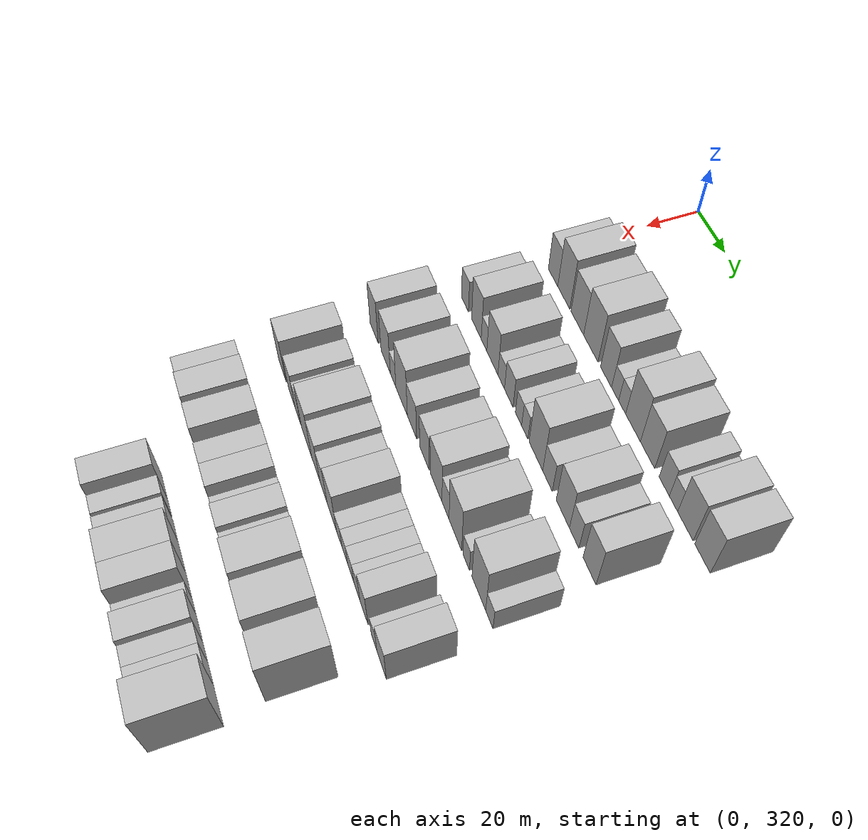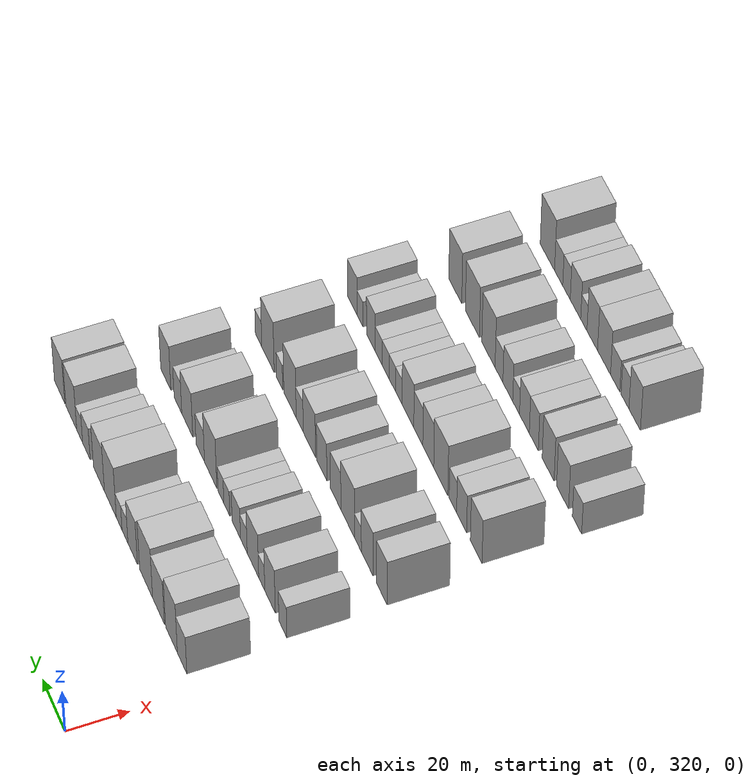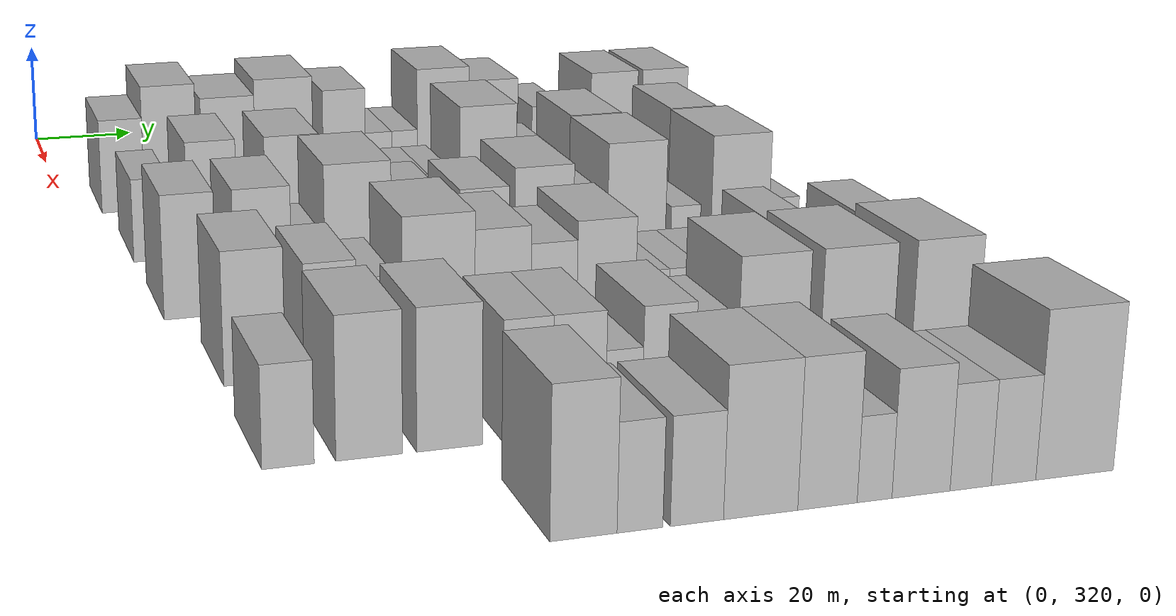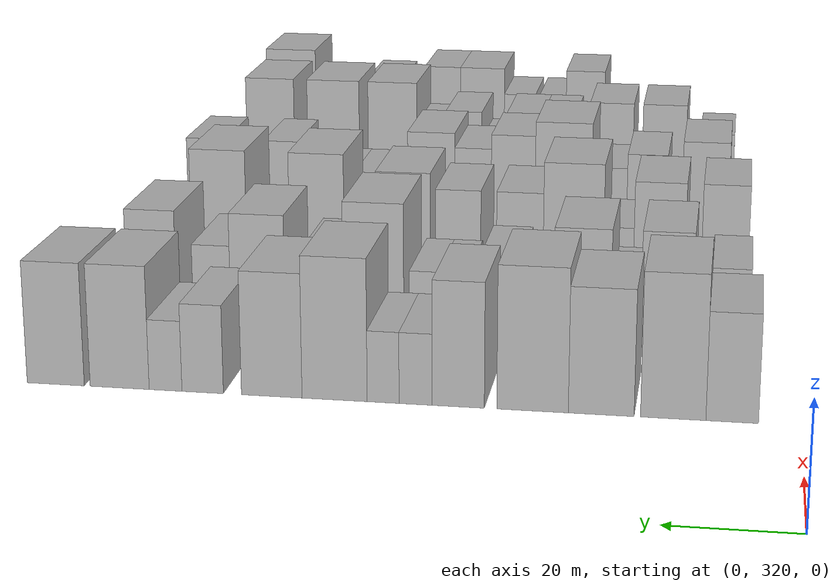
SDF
<sdf version="1.6">
 <world name="default">
  <model name="building_88">
   <static>1</static>
   <pose>50.0000 330.6429 0 0.000000 0.000000 0.000000</pose>
   <link name="link">
    <pose>0 0 9.00 0 0 0</pose>
    <collision name="collision"><geometry><box><size>20.0000 8.1481 18.0000</size></box></geometry></collision>
    <visual name="visual">
     <cast_shadows>0</cast_shadows>
     <geometry><box><size>20.0000 8.1481 18.0000</size></box></geometry>
     <material>
      <script>
       <uri>model://HANNAS_wall/materials/scripts</uri>
       <uri>model://HANNAS_wall/materials/textures</uri>
       <name>vrc/HANNAS_wall</name>
      </script>
     </material>
    </visual>
   </link>
  </model>
  <model name="building_89">
   <static>1</static>
   <pose>50.0000 339.8225 0 0.000000 0.000000 0.000000</pose>
   <link name="link">
    <pose>0 0 12.00 0 0 0</pose>
    <collision name="collision"><geometry><box><size>20.0000 10.2111 24.0000</size></box></geometry></collision>
    <visual name="visual">
     <cast_shadows>0</cast_shadows>
     <geometry><box><size>20.0000 10.2111 24.0000</size></box></geometry>
     <material>
      <script>
       <uri>model://HANNAS_wall/materials/scripts</uri>
       <uri>model://HANNAS_wall/materials/textures</uri>
       <name>vrc/HANNAS_wall</name>
      </script>
     </material>
    </visual>
   </link>
  </model>
  <model name="building_90">
   <static>1</static>
   <pose>50.0000 351.1160 0 0.000000 0.000000 0.000000</pose>
   <link name="link">
    <pose>0 0 10.50 0 0 0</pose>
    <collision name="collision"><geometry><box><size>20.0000 10.3759 21.0000</size></box></geometry></collision>
    <visual name="visual">
     <cast_shadows>0</cast_shadows>
     <geometry><box><size>20.0000 10.3759 21.0000</size></box></geometry>
     <material>
      <script>
       <uri>model://HANNAS_wall/materials/scripts</uri>
       <uri>model://HANNAS_wall/materials/textures</uri>
       <name>vrc/HANNAS_wall</name>
      </script>
     </material>
    </visual>
   </link>
  </model>
  <model name="building_91">
   <static>1</static>
   <pose>50.0000 361.9929 0 0.000000 0.000000 0.000000</pose>
   <link name="link">
    <pose>0 0 12.00 0 0 0</pose>
    <collision name="collision"><geometry><box><size>20.0000 11.3780 24.0000</size></box></geometry></collision>
    <visual name="visual">
     <cast_shadows>0</cast_shadows>
     <geometry><box><size>20.0000 11.3780 24.0000</size></box></geometry>
     <material>
      <script>
       <uri>model://HANNAS_wall/materials/scripts</uri>
       <uri>model://HANNAS_wall/materials/textures</uri>
       <name>vrc/HANNAS_wall</name>
      </script>
     </material>
    </visual>
   </link>
  </model>
  <model name="building_92">
   <static>1</static>
   <pose>50.0000 373.8961 0 0.000000 0.000000 0.000000</pose>
   <link name="link">
    <pose>0 0 10.50 0 0 0</pose>
    <collision name="collision"><geometry><box><size>20.0000 8.4284 21.0000</size></box></geometry></collision>
    <visual name="visual">
     <cast_shadows>0</cast_shadows>
     <geometry><box><size>20.0000 8.4284 21.0000</size></box></geometry>
     <material>
      <script>
       <uri>model://HANNAS_wall/materials/scripts</uri>
       <uri>model://HANNAS_wall/materials/textures</uri>
       <name>vrc/HANNAS_wall</name>
      </script>
     </material>
    </visual>
   </link>
  </model>
  <model name="building_93">
   <static>1</static>
   <pose>50.0000 380.7720 0 0.000000 0.000000 0.000000</pose>
   <link name="link">
    <pose>0 0 6.00 0 0 0</pose>
    <collision name="collision"><geometry><box><size>20.0000 5.3233 12.0000</size></box></geometry></collision>
    <visual name="visual">
     <cast_shadows>0</cast_shadows>
     <geometry><box><size>20.0000 5.3233 12.0000</size></box></geometry>
     <material>
      <script>
       <uri>model://HANNAS_wall/materials/scripts</uri>
       <uri>model://HANNAS_wall/materials/textures</uri>
       <name>vrc/HANNAS_wall</name>
      </script>
     </material>
    </visual>
   </link>
  </model>
  <model name="building_94">
   <static>1</static>
   <pose>50.0000 386.0260 0 0.000000 0.000000 0.000000</pose>
   <link name="link">
    <pose>0 0 6.00 0 0 0</pose>
    <collision name="collision"><geometry><box><size>20.0000 5.1848 12.0000</size></box></geometry></collision>
    <visual name="visual">
     <cast_shadows>0</cast_shadows>
     <geometry><box><size>20.0000 5.1848 12.0000</size></box></geometry>
     <material>
      <script>
       <uri>model://HANNAS_wall/materials/scripts</uri>
       <uri>model://HANNAS_wall/materials/textures</uri>
       <name>vrc/HANNAS_wall</name>
      </script>
     </material>
    </visual>
   </link>
  </model>
  <model name="building_95">
   <static>1</static>
   <pose>50.0000 393.9552 0 0.000000 0.000000 0.000000</pose>
   <link name="link">
    <pose>0 0 12.00 0 0 0</pose>
    <collision name="collision"><geometry><box><size>20.0000 10.6734 24.0000</size></box></geometry></collision>
    <visual name="visual">
     <cast_shadows>0</cast_shadows>
     <geometry><box><size>20.0000 10.6734 24.0000</size></box></geometry>
     <material>
      <script>
       <uri>model://HANNAS_wall/materials/scripts</uri>
       <uri>model://HANNAS_wall/materials/textures</uri>
       <name>vrc/HANNAS_wall</name>
      </script>
     </material>
    </visual>
   </link>
  </model>
  <model name="building_96">
   <static>1</static>
   <pose>50.0000 404.2998 0 0.000000 0.000000 0.000000</pose>
   <link name="link">
    <pose>0 0 10.50 0 0 0</pose>
    <collision name="collision"><geometry><box><size>20.0000 10.0159 21.0000</size></box></geometry></collision>
    <visual name="visual">
     <cast_shadows>0</cast_shadows>
     <geometry><box><size>20.0000 10.0159 21.0000</size></box></geometry>
     <material>
      <script>
       <uri>model://HANNAS_wall/materials/scripts</uri>
       <uri>model://HANNAS_wall/materials/textures</uri>
       <name>vrc/HANNAS_wall</name>
      </script>
     </material>
    </visual>
   </link>
  </model>
  <model name="building_97">
   <static>1</static>
   <pose>50.0000 415.7673 0 0.000000 0.000000 0.000000</pose>
   <link name="link">
    <pose>0 0 7.50 0 0 0</pose>
    <collision name="collision"><geometry><box><size>20.0000 6.9191 15.0000</size></box></geometry></collision>
    <visual name="visual">
     <cast_shadows>0</cast_shadows>
     <geometry><box><size>20.0000 6.9191 15.0000</size></box></geometry>
     <material>
      <script>
       <uri>model://HANNAS_wall/materials/scripts</uri>
       <uri>model://HANNAS_wall/materials/textures</uri>
       <name>vrc/HANNAS_wall</name>
      </script>
     </material>
    </visual>
   </link>
  </model>
  <model name="building_98">
   <static>1</static>
   <pose>50.0000 421.9792 0 0.000000 0.000000 0.000000</pose>
   <link name="link">
    <pose>0 0 6.00 0 0 0</pose>
    <collision name="collision"><geometry><box><size>20.0000 5.5048 12.0000</size></box></geometry></collision>
    <visual name="visual">
     <cast_shadows>0</cast_shadows>
     <geometry><box><size>20.0000 5.5048 12.0000</size></box></geometry>
     <material>
      <script>
       <uri>model://HANNAS_wall/materials/scripts</uri>
       <uri>model://HANNAS_wall/materials/textures</uri>
       <name>vrc/HANNAS_wall</name>
      </script>
     </material>
    </visual>
   </link>
  </model>
  <model name="building_99">
   <static>1</static>
   <pose>50.0000 429.7190 0 0.000000 0.000000 0.000000</pose>
   <link name="link">
    <pose>0 0 10.50 0 0 0</pose>
    <collision name="collision"><geometry><box><size>20.0000 9.9748 21.0000</size></box></geometry></collision>
    <visual name="visual">
     <cast_shadows>0</cast_shadows>
     <geometry><box><size>20.0000 9.9748 21.0000</size></box></geometry>
     <material>
      <script>
       <uri>model://HANNAS_wall/materials/scripts</uri>
       <uri>model://HANNAS_wall/materials/textures</uri>
       <name>vrc/HANNAS_wall</name>
      </script>
     </material>
    </visual>
   </link>
  </model>
  <model name="building_100">
   <static>1</static>
   <pose>50.0000 440.5729 0 0.000000 0.000000 0.000000</pose>
   <link name="link">
    <pose>0 0 10.50 0 0 0</pose>
    <collision name="collision"><geometry><box><size>20.0000 9.7330 21.0000</size></box></geometry></collision>
    <visual name="visual">
     <cast_shadows>0</cast_shadows>
     <geometry><box><size>20.0000 9.7330 21.0000</size></box></geometry>
     <material>
      <script>
       <uri>model://HANNAS_wall/materials/scripts</uri>
       <uri>model://HANNAS_wall/materials/textures</uri>
       <name>vrc/HANNAS_wall</name>
      </script>
     </material>
    </visual>
   </link>
  </model>
  <model name="building_212">
   <static>1</static>
   <pose>82.0000 331.5010 0 0.000000 0.000000 0.000000</pose>
   <link name="link">
    <pose>0 0 7.50 0 0 0</pose>
    <collision name="collision"><geometry><box><size>20.0000 6.6746 15.0000</size></box></geometry></collision>
    <visual name="visual">
     <cast_shadows>0</cast_shadows>
     <geometry><box><size>20.0000 6.6746 15.0000</size></box></geometry>
     <material>
      <script>
       <uri>model://HANNAS_wall/materials/scripts</uri>
       <uri>model://HANNAS_wall/materials/textures</uri>
       <name>vrc/HANNAS_wall</name>
      </script>
     </material>
    </visual>
   </link>
  </model>
  <model name="building_213">
   <static>1</static>
   <pose>82.0000 342.2867 0 0.000000 0.000000 0.000000</pose>
   <link name="link">
    <pose>0 0 10.50 0 0 0</pose>
    <collision name="collision"><geometry><box><size>20.0000 8.8967 21.0000</size></box></geometry></collision>
    <visual name="visual">
     <cast_shadows>0</cast_shadows>
     <geometry><box><size>20.0000 8.8967 21.0000</size></box></geometry>
     <material>
      <script>
       <uri>model://HANNAS_wall/materials/scripts</uri>
       <uri>model://HANNAS_wall/materials/textures</uri>
       <name>vrc/HANNAS_wall</name>
      </script>
     </material>
    </visual>
   </link>
  </model>
  <model name="building_214">
   <static>1</static>
   <pose>82.0000 349.3126 0 0.000000 0.000000 0.000000</pose>
   <link name="link">
    <pose>0 0 6.00 0 0 0</pose>
    <collision name="collision"><geometry><box><size>20.0000 5.1551 12.0000</size></box></geometry></collision>
    <visual name="visual">
     <cast_shadows>0</cast_shadows>
     <geometry><box><size>20.0000 5.1551 12.0000</size></box></geometry>
     <material>
      <script>
       <uri>model://HANNAS_wall/materials/scripts</uri>
       <uri>model://HANNAS_wall/materials/textures</uri>
       <name>vrc/HANNAS_wall</name>
      </script>
     </material>
    </visual>
   </link>
  </model>
  <model name="building_215">
   <static>1</static>
   <pose>82.0000 356.8119 0 0.000000 0.000000 0.000000</pose>
   <link name="link">
    <pose>0 0 10.50 0 0 0</pose>
    <collision name="collision"><geometry><box><size>20.0000 9.8436 21.0000</size></box></geometry></collision>
    <visual name="visual">
     <cast_shadows>0</cast_shadows>
     <geometry><box><size>20.0000 9.8436 21.0000</size></box></geometry>
     <material>
      <script>
       <uri>model://HANNAS_wall/materials/scripts</uri>
       <uri>model://HANNAS_wall/materials/textures</uri>
       <name>vrc/HANNAS_wall</name>
      </script>
     </material>
    </visual>
   </link>
  </model>
  <model name="building_216">
   <static>1</static>
   <pose>82.0000 364.5999 0 0.000000 0.000000 0.000000</pose>
   <link name="link">
    <pose>0 0 6.00 0 0 0</pose>
    <collision name="collision"><geometry><box><size>20.0000 5.7325 12.0000</size></box></geometry></collision>
    <visual name="visual">
     <cast_shadows>0</cast_shadows>
     <geometry><box><size>20.0000 5.7325 12.0000</size></box></geometry>
     <material>
      <script>
       <uri>model://HANNAS_wall/materials/scripts</uri>
       <uri>model://HANNAS_wall/materials/textures</uri>
       <name>vrc/HANNAS_wall</name>
      </script>
     </material>
    </visual>
   </link>
  </model>
  <model name="building_217">
   <static>1</static>
   <pose>82.0000 371.1048 0 0.000000 0.000000 0.000000</pose>
   <link name="link">
    <pose>0 0 7.50 0 0 0</pose>
    <collision name="collision"><geometry><box><size>20.0000 7.2773 15.0000</size></box></geometry></collision>
    <visual name="visual">
     <cast_shadows>0</cast_shadows>
     <geometry><box><size>20.0000 7.2773 15.0000</size></box></geometry>
     <material>
      <script>
       <uri>model://HANNAS_wall/materials/scripts</uri>
       <uri>model://HANNAS_wall/materials/textures</uri>
       <name>vrc/HANNAS_wall</name>
      </script>
     </material>
    </visual>
   </link>
  </model>
  <model name="building_218">
   <static>1</static>
   <pose>82.0000 379.3318 0 0.000000 0.000000 0.000000</pose>
   <link name="link">
    <pose>0 0 6.00 0 0 0</pose>
    <collision name="collision"><geometry><box><size>20.0000 5.1766 12.0000</size></box></geometry></collision>
    <visual name="visual">
     <cast_shadows>0</cast_shadows>
     <geometry><box><size>20.0000 5.1766 12.0000</size></box></geometry>
     <material>
      <script>
       <uri>model://HANNAS_wall/materials/scripts</uri>
       <uri>model://HANNAS_wall/materials/textures</uri>
       <name>vrc/HANNAS_wall</name>
      </script>
     </material>
    </visual>
   </link>
  </model>
  <model name="building_219">
   <static>1</static>
   <pose>82.0000 384.4705 0 0.000000 0.000000 0.000000</pose>
   <link name="link">
    <pose>0 0 6.00 0 0 0</pose>
    <collision name="collision"><geometry><box><size>20.0000 5.1007 12.0000</size></box></geometry></collision>
    <visual name="visual">
     <cast_shadows>0</cast_shadows>
     <geometry><box><size>20.0000 5.1007 12.0000</size></box></geometry>
     <material>
      <script>
       <uri>model://HANNAS_wall/materials/scripts</uri>
       <uri>model://HANNAS_wall/materials/textures</uri>
       <name>vrc/HANNAS_wall</name>
      </script>
     </material>
    </visual>
   </link>
  </model>
  <model name="building_220">
   <static>1</static>
   <pose>82.0000 393.4251 0 0.000000 0.000000 0.000000</pose>
   <link name="link">
    <pose>0 0 12.00 0 0 0</pose>
    <collision name="collision"><geometry><box><size>20.0000 10.8086 24.0000</size></box></geometry></collision>
    <visual name="visual">
     <cast_shadows>0</cast_shadows>
     <geometry><box><size>20.0000 10.8086 24.0000</size></box></geometry>
     <material>
      <script>
       <uri>model://HANNAS_wall/materials/scripts</uri>
       <uri>model://HANNAS_wall/materials/textures</uri>
       <name>vrc/HANNAS_wall</name>
      </script>
     </material>
    </visual>
   </link>
  </model>
  <model name="building_221">
   <static>1</static>
   <pose>82.0000 402.5448 0 0.000000 0.000000 0.000000</pose>
   <link name="link">
    <pose>0 0 7.50 0 0 0</pose>
    <collision name="collision"><geometry><box><size>20.0000 7.4308 15.0000</size></box></geometry></collision>
    <visual name="visual">
     <cast_shadows>0</cast_shadows>
     <geometry><box><size>20.0000 7.4308 15.0000</size></box></geometry>
     <material>
      <script>
       <uri>model://HANNAS_wall/materials/scripts</uri>
       <uri>model://HANNAS_wall/materials/textures</uri>
       <name>vrc/HANNAS_wall</name>
      </script>
     </material>
    </visual>
   </link>
  </model>
  <model name="building_222">
   <static>1</static>
   <pose>82.0000 414.1759 0 0.000000 0.000000 0.000000</pose>
   <link name="link">
    <pose>0 0 10.50 0 0 0</pose>
    <collision name="collision"><geometry><box><size>20.0000 9.8314 21.0000</size></box></geometry></collision>
    <visual name="visual">
     <cast_shadows>0</cast_shadows>
     <geometry><box><size>20.0000 9.8314 21.0000</size></box></geometry>
     <material>
      <script>
       <uri>model://HANNAS_wall/materials/scripts</uri>
       <uri>model://HANNAS_wall/materials/textures</uri>
       <name>vrc/HANNAS_wall</name>
      </script>
     </material>
    </visual>
   </link>
  </model>
  <model name="building_223">
   <static>1</static>
   <pose>82.0000 422.5048 0 0.000000 0.000000 0.000000</pose>
   <link name="link">
    <pose>0 0 7.50 0 0 0</pose>
    <collision name="collision"><geometry><box><size>20.0000 6.8265 15.0000</size></box></geometry></collision>
    <visual name="visual">
     <cast_shadows>0</cast_shadows>
     <geometry><box><size>20.0000 6.8265 15.0000</size></box></geometry>
     <material>
      <script>
       <uri>model://HANNAS_wall/materials/scripts</uri>
       <uri>model://HANNAS_wall/materials/textures</uri>
       <name>vrc/HANNAS_wall</name>
      </script>
     </material>
    </visual>
   </link>
  </model>
  <model name="building_224">
   <static>1</static>
   <pose>82.0000 433.4598 0 0.000000 0.000000 0.000000</pose>
   <link name="link">
    <pose>0 0 10.50 0 0 0</pose>
    <collision name="collision"><geometry><box><size>20.0000 9.0836 21.0000</size></box></geometry></collision>
    <visual name="visual">
     <cast_shadows>0</cast_shadows>
     <geometry><box><size>20.0000 9.0836 21.0000</size></box></geometry>
     <material>
      <script>
       <uri>model://HANNAS_wall/materials/scripts</uri>
       <uri>model://HANNAS_wall/materials/textures</uri>
       <name>vrc/HANNAS_wall</name>
      </script>
     </material>
    </visual>
   </link>
  </model>
  <model name="building_337">
   <static>1</static>
   <pose>114.0000 332.9598 0 0.000000 0.000000 0.000000</pose>
   <link name="link">
    <pose>0 0 10.50 0 0 0</pose>
    <collision name="collision"><geometry><box><size>20.0000 8.6350 21.0000</size></box></geometry></collision>
    <visual name="visual">
     <cast_shadows>0</cast_shadows>
     <geometry><box><size>20.0000 8.6350 21.0000</size></box></geometry>
     <material>
      <script>
       <uri>model://HANNAS_wall/materials/scripts</uri>
       <uri>model://HANNAS_wall/materials/textures</uri>
       <name>vrc/HANNAS_wall</name>
      </script>
     </material>
    </visual>
   </link>
  </model>
  <model name="building_338">
   <static>1</static>
   <pose>114.0000 345.0696 0 0.000000 0.000000 0.000000</pose>
   <link name="link">
    <pose>0 0 10.50 0 0 0</pose>
    <collision name="collision"><geometry><box><size>20.0000 9.5846 21.0000</size></box></geometry></collision>
    <visual name="visual">
     <cast_shadows>0</cast_shadows>
     <geometry><box><size>20.0000 9.5846 21.0000</size></box></geometry>
     <material>
      <script>
       <uri>model://HANNAS_wall/materials/scripts</uri>
       <uri>model://HANNAS_wall/materials/textures</uri>
       <name>vrc/HANNAS_wall</name>
      </script>
     </material>
    </visual>
   </link>
  </model>
  <model name="building_339">
   <static>1</static>
   <pose>114.0000 352.6722 0 0.000000 0.000000 0.000000</pose>
   <link name="link">
    <pose>0 0 6.00 0 0 0</pose>
    <collision name="collision"><geometry><box><size>20.0000 5.6205 12.0000</size></box></geometry></collision>
    <visual name="visual">
     <cast_shadows>0</cast_shadows>
     <geometry><box><size>20.0000 5.6205 12.0000</size></box></geometry>
     <material>
      <script>
       <uri>model://HANNAS_wall/materials/scripts</uri>
       <uri>model://HANNAS_wall/materials/textures</uri>
       <name>vrc/HANNAS_wall</name>
      </script>
     </material>
    </visual>
   </link>
  </model>
  <model name="building_340">
   <static>1</static>
   <pose>114.0000 361.1443 0 0.000000 0.000000 0.000000</pose>
   <link name="link">
    <pose>0 0 12.00 0 0 0</pose>
    <collision name="collision"><geometry><box><size>20.0000 11.3237 24.0000</size></box></geometry></collision>
    <visual name="visual">
     <cast_shadows>0</cast_shadows>
     <geometry><box><size>20.0000 11.3237 24.0000</size></box></geometry>
     <material>
      <script>
       <uri>model://HANNAS_wall/materials/scripts</uri>
       <uri>model://HANNAS_wall/materials/textures</uri>
       <name>vrc/HANNAS_wall</name>
      </script>
     </material>
    </visual>
   </link>
  </model>
  <model name="building_341">
   <static>1</static>
   <pose>114.0000 371.2280 0 0.000000 0.000000 0.000000</pose>
   <link name="link">
    <pose>0 0 9.00 0 0 0</pose>
    <collision name="collision"><geometry><box><size>20.0000 8.8437 18.0000</size></box></geometry></collision>
    <visual name="visual">
     <cast_shadows>0</cast_shadows>
     <geometry><box><size>20.0000 8.8437 18.0000</size></box></geometry>
     <material>
      <script>
       <uri>model://HANNAS_wall/materials/scripts</uri>
       <uri>model://HANNAS_wall/materials/textures</uri>
       <name>vrc/HANNAS_wall</name>
      </script>
     </material>
    </visual>
   </link>
  </model>
  <model name="building_342">
   <static>1</static>
   <pose>114.0000 382.9718 0 0.000000 0.000000 0.000000</pose>
   <link name="link">
    <pose>0 0 9.00 0 0 0</pose>
    <collision name="collision"><geometry><box><size>20.0000 8.6440 18.0000</size></box></geometry></collision>
    <visual name="visual">
     <cast_shadows>0</cast_shadows>
     <geometry><box><size>20.0000 8.6440 18.0000</size></box></geometry>
     <material>
      <script>
       <uri>model://HANNAS_wall/materials/scripts</uri>
       <uri>model://HANNAS_wall/materials/textures</uri>
       <name>vrc/HANNAS_wall</name>
      </script>
     </material>
    </visual>
   </link>
  </model>
  <model name="building_343">
   <static>1</static>
   <pose>114.0000 393.5318 0 0.000000 0.000000 0.000000</pose>
   <link name="link">
    <pose>0 0 10.50 0 0 0</pose>
    <collision name="collision"><geometry><box><size>20.0000 10.4761 21.0000</size></box></geometry></collision>
    <visual name="visual">
     <cast_shadows>0</cast_shadows>
     <geometry><box><size>20.0000 10.4761 21.0000</size></box></geometry>
     <material>
      <script>
       <uri>model://HANNAS_wall/materials/scripts</uri>
       <uri>model://HANNAS_wall/materials/textures</uri>
       <name>vrc/HANNAS_wall</name>
      </script>
     </material>
    </visual>
   </link>
  </model>
  <model name="building_344">
   <static>1</static>
   <pose>114.0000 401.8330 0 0.000000 0.000000 0.000000</pose>
   <link name="link">
    <pose>0 0 7.50 0 0 0</pose>
    <collision name="collision"><geometry><box><size>20.0000 6.1262 15.0000</size></box></geometry></collision>
    <visual name="visual">
     <cast_shadows>0</cast_shadows>
     <geometry><box><size>20.0000 6.1262 15.0000</size></box></geometry>
     <material>
      <script>
       <uri>model://HANNAS_wall/materials/scripts</uri>
       <uri>model://HANNAS_wall/materials/textures</uri>
       <name>vrc/HANNAS_wall</name>
      </script>
     </material>
    </visual>
   </link>
  </model>
  <model name="building_345">
   <static>1</static>
   <pose>114.0000 410.2191 0 0.000000 0.000000 0.000000</pose>
   <link name="link">
    <pose>0 0 12.00 0 0 0</pose>
    <collision name="collision"><geometry><box><size>20.0000 10.6461 24.0000</size></box></geometry></collision>
    <visual name="visual">
     <cast_shadows>0</cast_shadows>
     <geometry><box><size>20.0000 10.6461 24.0000</size></box></geometry>
     <material>
      <script>
       <uri>model://HANNAS_wall/materials/scripts</uri>
       <uri>model://HANNAS_wall/materials/textures</uri>
       <name>vrc/HANNAS_wall</name>
      </script>
     </material>
    </visual>
   </link>
  </model>
  <model name="building_346">
   <static>1</static>
   <pose>114.0000 419.2574 0 0.000000 0.000000 0.000000</pose>
   <link name="link">
    <pose>0 0 6.00 0 0 0</pose>
    <collision name="collision"><geometry><box><size>20.0000 5.4304 12.0000</size></box></geometry></collision>
    <visual name="visual">
     <cast_shadows>0</cast_shadows>
     <geometry><box><size>20.0000 5.4304 12.0000</size></box></geometry>
     <material>
      <script>
       <uri>model://HANNAS_wall/materials/scripts</uri>
       <uri>model://HANNAS_wall/materials/textures</uri>
       <name>vrc/HANNAS_wall</name>
      </script>
     </material>
    </visual>
   </link>
  </model>
  <model name="building_347">
   <static>1</static>
   <pose>114.0000 429.4180 0 0.000000 0.000000 0.000000</pose>
   <link name="link">
    <pose>0 0 12.00 0 0 0</pose>
    <collision name="collision"><geometry><box><size>20.0000 10.8908 24.0000</size></box></geometry></collision>
    <visual name="visual">
     <cast_shadows>0</cast_shadows>
     <geometry><box><size>20.0000 10.8908 24.0000</size></box></geometry>
     <material>
      <script>
       <uri>model://HANNAS_wall/materials/scripts</uri>
       <uri>model://HANNAS_wall/materials/textures</uri>
       <name>vrc/HANNAS_wall</name>
      </script>
     </material>
    </visual>
   </link>
  </model>
  <model name="building_348">
   <static>1</static>
   <pose>114.0000 437.6790 0 0.000000 0.000000 0.000000</pose>
   <link name="link">
    <pose>0 0 6.00 0 0 0</pose>
    <collision name="collision"><geometry><box><size>20.0000 5.6313 12.0000</size></box></geometry></collision>
    <visual name="visual">
     <cast_shadows>0</cast_shadows>
     <geometry><box><size>20.0000 5.6313 12.0000</size></box></geometry>
     <material>
      <script>
       <uri>model://HANNAS_wall/materials/scripts</uri>
       <uri>model://HANNAS_wall/materials/textures</uri>
       <name>vrc/HANNAS_wall</name>
      </script>
     </material>
    </visual>
   </link>
  </model>
  <model name="building_459">
   <static>1</static>
   <pose>146.0000 337.3604 0 0.000000 0.000000 0.000000</pose>
   <link name="link">
    <pose>0 0 10.50 0 0 0</pose>
    <collision name="collision"><geometry><box><size>20.0000 9.3294 21.0000</size></box></geometry></collision>
    <visual name="visual">
     <cast_shadows>0</cast_shadows>
     <geometry><box><size>20.0000 9.3294 21.0000</size></box></geometry>
     <material>
      <script>
       <uri>model://HANNAS_wall/materials/scripts</uri>
       <uri>model://HANNAS_wall/materials/textures</uri>
       <name>vrc/HANNAS_wall</name>
      </script>
     </material>
    </visual>
   </link>
  </model>
  <model name="building_460">
   <static>1</static>
   <pose>146.0000 349.0527 0 0.000000 0.000000 0.000000</pose>
   <link name="link">
    <pose>0 0 9.00 0 0 0</pose>
    <collision name="collision"><geometry><box><size>20.0000 8.0553 18.0000</size></box></geometry></collision>
    <visual name="visual">
     <cast_shadows>0</cast_shadows>
     <geometry><box><size>20.0000 8.0553 18.0000</size></box></geometry>
     <material>
      <script>
       <uri>model://HANNAS_wall/materials/scripts</uri>
       <uri>model://HANNAS_wall/materials/textures</uri>
       <name>vrc/HANNAS_wall</name>
      </script>
     </material>
    </visual>
   </link>
  </model>
  <model name="building_461">
   <static>1</static>
   <pose>146.0000 356.1349 0 0.000000 0.000000 0.000000</pose>
   <link name="link">
    <pose>0 0 7.50 0 0 0</pose>
    <collision name="collision"><geometry><box><size>20.0000 6.1092 15.0000</size></box></geometry></collision>
    <visual name="visual">
     <cast_shadows>0</cast_shadows>
     <geometry><box><size>20.0000 6.1092 15.0000</size></box></geometry>
     <material>
      <script>
       <uri>model://HANNAS_wall/materials/scripts</uri>
       <uri>model://HANNAS_wall/materials/textures</uri>
       <name>vrc/HANNAS_wall</name>
      </script>
     </material>
    </visual>
   </link>
  </model>
  <model name="building_462">
   <static>1</static>
   <pose>146.0000 365.9399 0 0.000000 0.000000 0.000000</pose>
   <link name="link">
    <pose>0 0 12.00 0 0 0</pose>
    <collision name="collision"><geometry><box><size>20.0000 11.5008 24.0000</size></box></geometry></collision>
    <visual name="visual">
     <cast_shadows>0</cast_shadows>
     <geometry><box><size>20.0000 11.5008 24.0000</size></box></geometry>
     <material>
      <script>
       <uri>model://HANNAS_wall/materials/scripts</uri>
       <uri>model://HANNAS_wall/materials/textures</uri>
       <name>vrc/HANNAS_wall</name>
      </script>
     </material>
    </visual>
   </link>
  </model>
  <model name="building_463">
   <static>1</static>
   <pose>146.0000 376.1839 0 0.000000 0.000000 0.000000</pose>
   <link name="link">
    <pose>0 0 10.50 0 0 0</pose>
    <collision name="collision"><geometry><box><size>20.0000 8.9871 21.0000</size></box></geometry></collision>
    <visual name="visual">
     <cast_shadows>0</cast_shadows>
     <geometry><box><size>20.0000 8.9871 21.0000</size></box></geometry>
     <material>
      <script>
       <uri>model://HANNAS_wall/materials/scripts</uri>
       <uri>model://HANNAS_wall/materials/textures</uri>
       <name>vrc/HANNAS_wall</name>
      </script>
     </material>
    </visual>
   </link>
  </model>
  <model name="building_464">
   <static>1</static>
   <pose>146.0000 384.4219 0 0.000000 0.000000 0.000000</pose>
   <link name="link">
    <pose>0 0 9.00 0 0 0</pose>
    <collision name="collision"><geometry><box><size>20.0000 7.4890 18.0000</size></box></geometry></collision>
    <visual name="visual">
     <cast_shadows>0</cast_shadows>
     <geometry><box><size>20.0000 7.4890 18.0000</size></box></geometry>
     <material>
      <script>
       <uri>model://HANNAS_wall/materials/scripts</uri>
       <uri>model://HANNAS_wall/materials/textures</uri>
       <name>vrc/HANNAS_wall</name>
      </script>
     </material>
    </visual>
   </link>
  </model>
  <model name="building_465">
   <static>1</static>
   <pose>146.0000 393.0199 0 0.000000 0.000000 0.000000</pose>
   <link name="link">
    <pose>0 0 10.50 0 0 0</pose>
    <collision name="collision"><geometry><box><size>20.0000 9.7069 21.0000</size></box></geometry></collision>
    <visual name="visual">
     <cast_shadows>0</cast_shadows>
     <geometry><box><size>20.0000 9.7069 21.0000</size></box></geometry>
     <material>
      <script>
       <uri>model://HANNAS_wall/materials/scripts</uri>
       <uri>model://HANNAS_wall/materials/textures</uri>
       <name>vrc/HANNAS_wall</name>
      </script>
     </material>
    </visual>
   </link>
  </model>
  <model name="building_466">
   <static>1</static>
   <pose>146.0000 400.6630 0 0.000000 0.000000 0.000000</pose>
   <link name="link">
    <pose>0 0 6.00 0 0 0</pose>
    <collision name="collision"><geometry><box><size>20.0000 5.5794 12.0000</size></box></geometry></collision>
    <visual name="visual">
     <cast_shadows>0</cast_shadows>
     <geometry><box><size>20.0000 5.5794 12.0000</size></box></geometry>
     <material>
      <script>
       <uri>model://HANNAS_wall/materials/scripts</uri>
       <uri>model://HANNAS_wall/materials/textures</uri>
       <name>vrc/HANNAS_wall</name>
      </script>
     </material>
    </visual>
   </link>
  </model>
  <model name="building_467">
   <static>1</static>
   <pose>146.0000 406.2115 0 0.000000 0.000000 0.000000</pose>
   <link name="link">
    <pose>0 0 6.00 0 0 0</pose>
    <collision name="collision"><geometry><box><size>20.0000 5.5174 12.0000</size></box></geometry></collision>
    <visual name="visual">
     <cast_shadows>0</cast_shadows>
     <geometry><box><size>20.0000 5.5174 12.0000</size></box></geometry>
     <material>
      <script>
       <uri>model://HANNAS_wall/materials/scripts</uri>
       <uri>model://HANNAS_wall/materials/textures</uri>
       <name>vrc/HANNAS_wall</name>
      </script>
     </material>
    </visual>
   </link>
  </model>
  <model name="building_468">
   <static>1</static>
   <pose>146.0000 411.8743 0 0.000000 0.000000 0.000000</pose>
   <link name="link">
    <pose>0 0 6.00 0 0 0</pose>
    <collision name="collision"><geometry><box><size>20.0000 5.8082 12.0000</size></box></geometry></collision>
    <visual name="visual">
     <cast_shadows>0</cast_shadows>
     <geometry><box><size>20.0000 5.8082 12.0000</size></box></geometry>
     <material>
      <script>
       <uri>model://HANNAS_wall/materials/scripts</uri>
       <uri>model://HANNAS_wall/materials/textures</uri>
       <name>vrc/HANNAS_wall</name>
      </script>
     </material>
    </visual>
   </link>
  </model>
  <model name="building_469">
   <static>1</static>
   <pose>146.0000 417.7025 0 0.000000 0.000000 0.000000</pose>
   <link name="link">
    <pose>0 0 6.00 0 0 0</pose>
    <collision name="collision"><geometry><box><size>20.0000 5.8483 12.0000</size></box></geometry></collision>
    <visual name="visual">
     <cast_shadows>0</cast_shadows>
     <geometry><box><size>20.0000 5.8483 12.0000</size></box></geometry>
     <material>
      <script>
       <uri>model://HANNAS_wall/materials/scripts</uri>
       <uri>model://HANNAS_wall/materials/textures</uri>
       <name>vrc/HANNAS_wall</name>
      </script>
     </material>
    </visual>
   </link>
  </model>
  <model name="building_470">
   <static>1</static>
   <pose>146.0000 424.3144 0 0.000000 0.000000 0.000000</pose>
   <link name="link">
    <pose>0 0 9.00 0 0 0</pose>
    <collision name="collision"><geometry><box><size>20.0000 7.3755 18.0000</size></box></geometry></collision>
    <visual name="visual">
     <cast_shadows>0</cast_shadows>
     <geometry><box><size>20.0000 7.3755 18.0000</size></box></geometry>
     <material>
      <script>
       <uri>model://HANNAS_wall/materials/scripts</uri>
       <uri>model://HANNAS_wall/materials/textures</uri>
       <name>vrc/HANNAS_wall</name>
      </script>
     </material>
    </visual>
   </link>
  </model>
  <model name="building_471">
   <static>1</static>
   <pose>146.0000 433.5154 0 0.000000 0.000000 0.000000</pose>
   <link name="link">
    <pose>0 0 6.00 0 0 0</pose>
    <collision name="collision"><geometry><box><size>20.0000 5.0264 12.0000</size></box></geometry></collision>
    <visual name="visual">
     <cast_shadows>0</cast_shadows>
     <geometry><box><size>20.0000 5.0264 12.0000</size></box></geometry>
     <material>
      <script>
       <uri>model://HANNAS_wall/materials/scripts</uri>
       <uri>model://HANNAS_wall/materials/textures</uri>
       <name>vrc/HANNAS_wall</name>
      </script>
     </material>
    </visual>
   </link>
  </model>
  <model name="building_472">
   <static>1</static>
   <pose>146.0000 440.1784 0 0.000000 0.000000 0.000000</pose>
   <link name="link">
    <pose>0 0 9.00 0 0 0</pose>
    <collision name="collision"><geometry><box><size>20.0000 8.2996 18.0000</size></box></geometry></collision>
    <visual name="visual">
     <cast_shadows>0</cast_shadows>
     <geometry><box><size>20.0000 8.2996 18.0000</size></box></geometry>
     <material>
      <script>
       <uri>model://HANNAS_wall/materials/scripts</uri>
       <uri>model://HANNAS_wall/materials/textures</uri>
       <name>vrc/HANNAS_wall</name>
      </script>
     </material>
    </visual>
   </link>
  </model>
  <model name="building_581">
   <static>1</static>
   <pose>178.0000 335.7226 0 0.000000 0.000000 0.000000</pose>
   <link name="link">
    <pose>0 0 7.50 0 0 0</pose>
    <collision name="collision"><geometry><box><size>20.0000 7.2470 15.0000</size></box></geometry></collision>
    <visual name="visual">
     <cast_shadows>0</cast_shadows>
     <geometry><box><size>20.0000 7.2470 15.0000</size></box></geometry>
     <material>
      <script>
       <uri>model://HANNAS_wall/materials/scripts</uri>
       <uri>model://HANNAS_wall/materials/textures</uri>
       <name>vrc/HANNAS_wall</name>
      </script>
     </material>
    </visual>
   </link>
  </model>
  <model name="building_582">
   <static>1</static>
   <pose>178.0000 347.0440 0 0.000000 0.000000 0.000000</pose>
   <link name="link">
    <pose>0 0 10.50 0 0 0</pose>
    <collision name="collision"><geometry><box><size>20.0000 9.3958 21.0000</size></box></geometry></collision>
    <visual name="visual">
     <cast_shadows>0</cast_shadows>
     <geometry><box><size>20.0000 9.3958 21.0000</size></box></geometry>
     <material>
      <script>
       <uri>model://HANNAS_wall/materials/scripts</uri>
       <uri>model://HANNAS_wall/materials/textures</uri>
       <name>vrc/HANNAS_wall</name>
      </script>
     </material>
    </visual>
   </link>
  </model>
  <model name="building_583">
   <static>1</static>
   <pose>178.0000 358.4678 0 0.000000 0.000000 0.000000</pose>
   <link name="link">
    <pose>0 0 10.50 0 0 0</pose>
    <collision name="collision"><geometry><box><size>20.0000 9.4518 21.0000</size></box></geometry></collision>
    <visual name="visual">
     <cast_shadows>0</cast_shadows>
     <geometry><box><size>20.0000 9.4518 21.0000</size></box></geometry>
     <material>
      <script>
       <uri>model://HANNAS_wall/materials/scripts</uri>
       <uri>model://HANNAS_wall/materials/textures</uri>
       <name>vrc/HANNAS_wall</name>
      </script>
     </material>
    </visual>
   </link>
  </model>
  <model name="building_584">
   <static>1</static>
   <pose>178.0000 369.8081 0 0.000000 0.000000 0.000000</pose>
   <link name="link">
    <pose>0 0 9.00 0 0 0</pose>
    <collision name="collision"><geometry><box><size>20.0000 7.2288 18.0000</size></box></geometry></collision>
    <visual name="visual">
     <cast_shadows>0</cast_shadows>
     <geometry><box><size>20.0000 7.2288 18.0000</size></box></geometry>
     <material>
      <script>
       <uri>model://HANNAS_wall/materials/scripts</uri>
       <uri>model://HANNAS_wall/materials/textures</uri>
       <name>vrc/HANNAS_wall</name>
      </script>
     </material>
    </visual>
   </link>
  </model>
  <model name="building_585">
   <static>1</static>
   <pose>178.0000 377.3561 0 0.000000 0.000000 0.000000</pose>
   <link name="link">
    <pose>0 0 9.00 0 0 0</pose>
    <collision name="collision"><geometry><box><size>20.0000 7.8672 18.0000</size></box></geometry></collision>
    <visual name="visual">
     <cast_shadows>0</cast_shadows>
     <geometry><box><size>20.0000 7.8672 18.0000</size></box></geometry>
     <material>
      <script>
       <uri>model://HANNAS_wall/materials/scripts</uri>
       <uri>model://HANNAS_wall/materials/textures</uri>
       <name>vrc/HANNAS_wall</name>
      </script>
     </material>
    </visual>
   </link>
  </model>
  <model name="building_586">
   <static>1</static>
   <pose>178.0000 384.0341 0 0.000000 0.000000 0.000000</pose>
   <link name="link">
    <pose>0 0 6.00 0 0 0</pose>
    <collision name="collision"><geometry><box><size>20.0000 5.4889 12.0000</size></box></geometry></collision>
    <visual name="visual">
     <cast_shadows>0</cast_shadows>
     <geometry><box><size>20.0000 5.4889 12.0000</size></box></geometry>
     <material>
      <script>
       <uri>model://HANNAS_wall/materials/scripts</uri>
       <uri>model://HANNAS_wall/materials/textures</uri>
       <name>vrc/HANNAS_wall</name>
      </script>
     </material>
    </visual>
   </link>
  </model>
  <model name="building_587">
   <static>1</static>
   <pose>178.0000 390.7650 0 0.000000 0.000000 0.000000</pose>
   <link name="link">
    <pose>0 0 9.00 0 0 0</pose>
    <collision name="collision"><geometry><box><size>20.0000 7.9729 18.0000</size></box></geometry></collision>
    <visual name="visual">
     <cast_shadows>0</cast_shadows>
     <geometry><box><size>20.0000 7.9729 18.0000</size></box></geometry>
     <material>
      <script>
       <uri>model://HANNAS_wall/materials/scripts</uri>
       <uri>model://HANNAS_wall/materials/textures</uri>
       <name>vrc/HANNAS_wall</name>
      </script>
     </material>
    </visual>
   </link>
  </model>
  <model name="building_588">
   <static>1</static>
   <pose>178.0000 397.9596 0 0.000000 0.000000 0.000000</pose>
   <link name="link">
    <pose>0 0 7.50 0 0 0</pose>
    <collision name="collision"><geometry><box><size>20.0000 6.4162 15.0000</size></box></geometry></collision>
    <visual name="visual">
     <cast_shadows>0</cast_shadows>
     <geometry><box><size>20.0000 6.4162 15.0000</size></box></geometry>
     <material>
      <script>
       <uri>model://HANNAS_wall/materials/scripts</uri>
       <uri>model://HANNAS_wall/materials/textures</uri>
       <name>vrc/HANNAS_wall</name>
      </script>
     </material>
    </visual>
   </link>
  </model>
  <model name="building_589">
   <static>1</static>
   <pose>178.0000 406.5930 0 0.000000 0.000000 0.000000</pose>
   <link name="link">
    <pose>0 0 12.00 0 0 0</pose>
    <collision name="collision"><geometry><box><size>20.0000 10.8505 24.0000</size></box></geometry></collision>
    <visual name="visual">
     <cast_shadows>0</cast_shadows>
     <geometry><box><size>20.0000 10.8505 24.0000</size></box></geometry>
     <material>
      <script>
       <uri>model://HANNAS_wall/materials/scripts</uri>
       <uri>model://HANNAS_wall/materials/textures</uri>
       <name>vrc/HANNAS_wall</name>
      </script>
     </material>
    </visual>
   </link>
  </model>
  <model name="building_590">
   <static>1</static>
   <pose>178.0000 419.8360 0 0.000000 0.000000 0.000000</pose>
   <link name="link">
    <pose>0 0 12.00 0 0 0</pose>
    <collision name="collision"><geometry><box><size>20.0000 11.6356 24.0000</size></box></geometry></collision>
    <visual name="visual">
     <cast_shadows>0</cast_shadows>
     <geometry><box><size>20.0000 11.6356 24.0000</size></box></geometry>
     <material>
      <script>
       <uri>model://HANNAS_wall/materials/scripts</uri>
       <uri>model://HANNAS_wall/materials/textures</uri>
       <name>vrc/HANNAS_wall</name>
      </script>
     </material>
    </visual>
   </link>
  </model>
  <model name="building_591">
   <static>1</static>
   <pose>178.0000 434.0655 0 0.000000 0.000000 0.000000</pose>
   <link name="link">
    <pose>0 0 12.00 0 0 0</pose>
    <collision name="collision"><geometry><box><size>20.0000 10.8233 24.0000</size></box></geometry></collision>
    <visual name="visual">
     <cast_shadows>0</cast_shadows>
     <geometry><box><size>20.0000 10.8233 24.0000</size></box></geometry>
     <material>
      <script>
       <uri>model://HANNAS_wall/materials/scripts</uri>
       <uri>model://HANNAS_wall/materials/textures</uri>
       <name>vrc/HANNAS_wall</name>
      </script>
     </material>
    </visual>
   </link>
  </model>
  <model name="building_702">
   <static>1</static>
   <pose>210.0000 366.7105 0 0.000000 0.000000 0.000000</pose>
   <link name="link">
    <pose>0 0 10.50 0 0 0</pose>
    <collision name="collision"><geometry><box><size>20.0000 8.9260 21.0000</size></box></geometry></collision>
    <visual name="visual">
     <cast_shadows>0</cast_shadows>
     <geometry><box><size>20.0000 8.9260 21.0000</size></box></geometry>
     <material>
      <script>
       <uri>model://HANNAS_wall/materials/scripts</uri>
       <uri>model://HANNAS_wall/materials/textures</uri>
       <name>vrc/HANNAS_wall</name>
      </script>
     </material>
    </visual>
   </link>
  </model>
  <model name="building_703">
   <static>1</static>
   <pose>210.0000 374.2592 0 0.000000 0.000000 0.000000</pose>
   <link name="link">
    <pose>0 0 7.50 0 0 0</pose>
    <collision name="collision"><geometry><box><size>20.0000 6.1715 15.0000</size></box></geometry></collision>
    <visual name="visual">
     <cast_shadows>0</cast_shadows>
     <geometry><box><size>20.0000 6.1715 15.0000</size></box></geometry>
     <material>
      <script>
       <uri>model://HANNAS_wall/materials/scripts</uri>
       <uri>model://HANNAS_wall/materials/textures</uri>
       <name>vrc/HANNAS_wall</name>
      </script>
     </material>
    </visual>
   </link>
  </model>
  <model name="building_704">
   <static>1</static>
   <pose>210.0000 381.9851 0 0.000000 0.000000 0.000000</pose>
   <link name="link">
    <pose>0 0 7.50 0 0 0</pose>
    <collision name="collision"><geometry><box><size>20.0000 7.2804 15.0000</size></box></geometry></collision>
    <visual name="visual">
     <cast_shadows>0</cast_shadows>
     <geometry><box><size>20.0000 7.2804 15.0000</size></box></geometry>
     <material>
      <script>
       <uri>model://HANNAS_wall/materials/scripts</uri>
       <uri>model://HANNAS_wall/materials/textures</uri>
       <name>vrc/HANNAS_wall</name>
      </script>
     </material>
    </visual>
   </link>
  </model>
  <model name="building_705">
   <static>1</static>
   <pose>210.0000 390.7876 0 0.000000 0.000000 0.000000</pose>
   <link name="link">
    <pose>0 0 10.50 0 0 0</pose>
    <collision name="collision"><geometry><box><size>20.0000 10.3246 21.0000</size></box></geometry></collision>
    <visual name="visual">
     <cast_shadows>0</cast_shadows>
     <geometry><box><size>20.0000 10.3246 21.0000</size></box></geometry>
     <material>
      <script>
       <uri>model://HANNAS_wall/materials/scripts</uri>
       <uri>model://HANNAS_wall/materials/textures</uri>
       <name>vrc/HANNAS_wall</name>
      </script>
     </material>
    </visual>
   </link>
  </model>
  <model name="building_706">
   <static>1</static>
   <pose>210.0000 400.1585 0 0.000000 0.000000 0.000000</pose>
   <link name="link">
    <pose>0 0 10.50 0 0 0</pose>
    <collision name="collision"><geometry><box><size>20.0000 8.4171 21.0000</size></box></geometry></collision>
    <visual name="visual">
     <cast_shadows>0</cast_shadows>
     <geometry><box><size>20.0000 8.4171 21.0000</size></box></geometry>
     <material>
      <script>
       <uri>model://HANNAS_wall/materials/scripts</uri>
       <uri>model://HANNAS_wall/materials/textures</uri>
       <name>vrc/HANNAS_wall</name>
      </script>
     </material>
    </visual>
   </link>
  </model>
  <model name="building_707">
   <static>1</static>
   <pose>210.0000 406.8660 0 0.000000 0.000000 0.000000</pose>
   <link name="link">
    <pose>0 0 6.00 0 0 0</pose>
    <collision name="collision"><geometry><box><size>20.0000 4.9981 12.0000</size></box></geometry></collision>
    <visual name="visual">
     <cast_shadows>0</cast_shadows>
     <geometry><box><size>20.0000 4.9981 12.0000</size></box></geometry>
     <material>
      <script>
       <uri>model://HANNAS_wall/materials/scripts</uri>
       <uri>model://HANNAS_wall/materials/textures</uri>
       <name>vrc/HANNAS_wall</name>
      </script>
     </material>
    </visual>
   </link>
  </model>
  <model name="building_708">
   <static>1</static>
   <pose>210.0000 413.5880 0 0.000000 0.000000 0.000000</pose>
   <link name="link">
    <pose>0 0 9.00 0 0 0</pose>
    <collision name="collision"><geometry><box><size>20.0000 8.4459 18.0000</size></box></geometry></collision>
    <visual name="visual">
     <cast_shadows>0</cast_shadows>
     <geometry><box><size>20.0000 8.4459 18.0000</size></box></geometry>
     <material>
      <script>
       <uri>model://HANNAS_wall/materials/scripts</uri>
       <uri>model://HANNAS_wall/materials/textures</uri>
       <name>vrc/HANNAS_wall</name>
      </script>
     </material>
    </visual>
   </link>
  </model>
  <model name="building_709">
   <static>1</static>
   <pose>210.0000 420.8527 0 0.000000 0.000000 0.000000</pose>
   <link name="link">
    <pose>0 0 7.50 0 0 0</pose>
    <collision name="collision"><geometry><box><size>20.0000 6.0834 15.0000</size></box></geometry></collision>
    <visual name="visual">
     <cast_shadows>0</cast_shadows>
     <geometry><box><size>20.0000 6.0834 15.0000</size></box></geometry>
     <material>
      <script>
       <uri>model://HANNAS_wall/materials/scripts</uri>
       <uri>model://HANNAS_wall/materials/textures</uri>
       <name>vrc/HANNAS_wall</name>
      </script>
     </material>
    </visual>
   </link>
  </model>
  <model name="building_710">
   <static>1</static>
   <pose>210.0000 427.2084 0 0.000000 0.000000 0.000000</pose>
   <link name="link">
    <pose>0 0 7.50 0 0 0</pose>
    <collision name="collision"><geometry><box><size>20.0000 6.6281 15.0000</size></box></geometry></collision>
    <visual name="visual">
     <cast_shadows>0</cast_shadows>
     <geometry><box><size>20.0000 6.6281 15.0000</size></box></geometry>
     <material>
      <script>
       <uri>model://HANNAS_wall/materials/scripts</uri>
       <uri>model://HANNAS_wall/materials/textures</uri>
       <name>vrc/HANNAS_wall</name>
      </script>
     </material>
    </visual>
   </link>
  </model>
  <model name="building_711">
   <static>1</static>
   <pose>210.0000 436.4056 0 0.000000 0.000000 0.000000</pose>
   <link name="link">
    <pose>0 0 12.00 0 0 0</pose>
    <collision name="collision"><geometry><box><size>20.0000 11.7662 24.0000</size></box></geometry></collision>
    <visual name="visual">
     <cast_shadows>0</cast_shadows>
     <geometry><box><size>20.0000 11.7662 24.0000</size></box></geometry>
     <material>
      <script>
       <uri>model://HANNAS_wall/materials/scripts</uri>
       <uri>model://HANNAS_wall/materials/textures</uri>
       <name>vrc/HANNAS_wall</name>
      </script>
     </material>
    </visual>
   </link>
  </model>
 </world>
</sdf>
